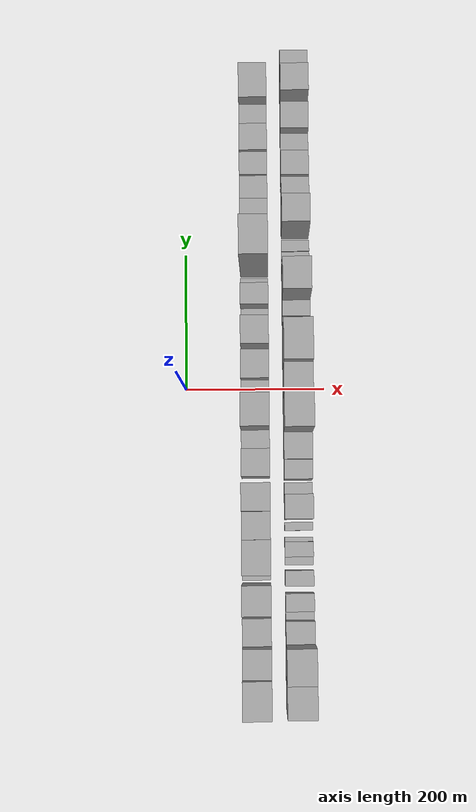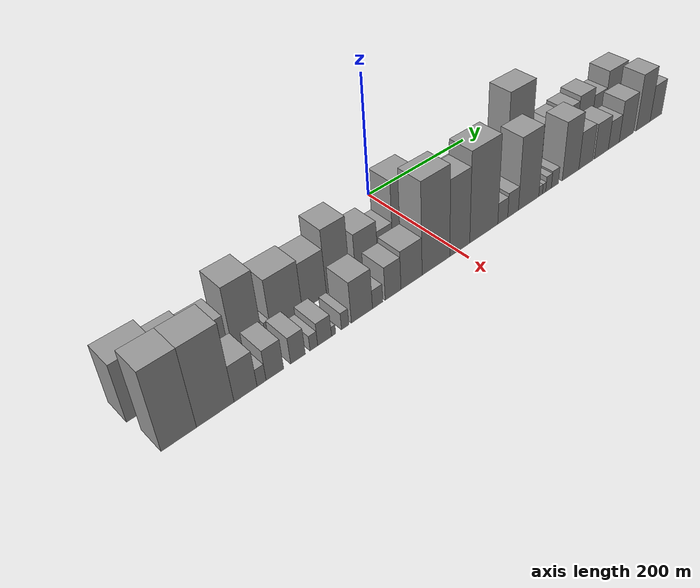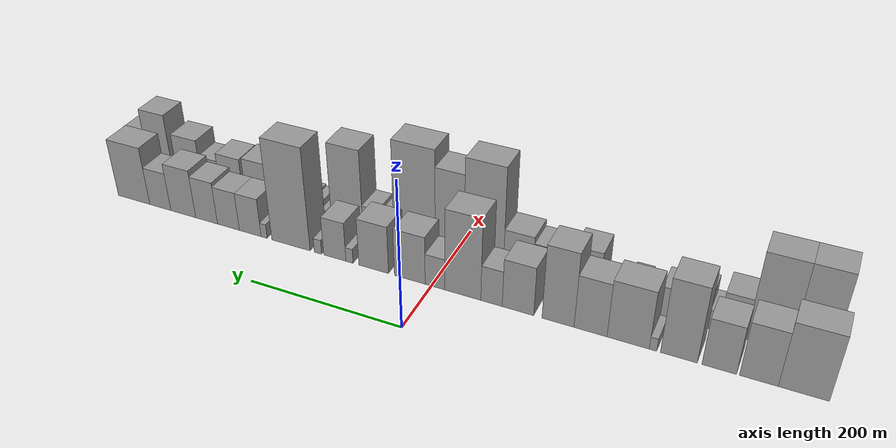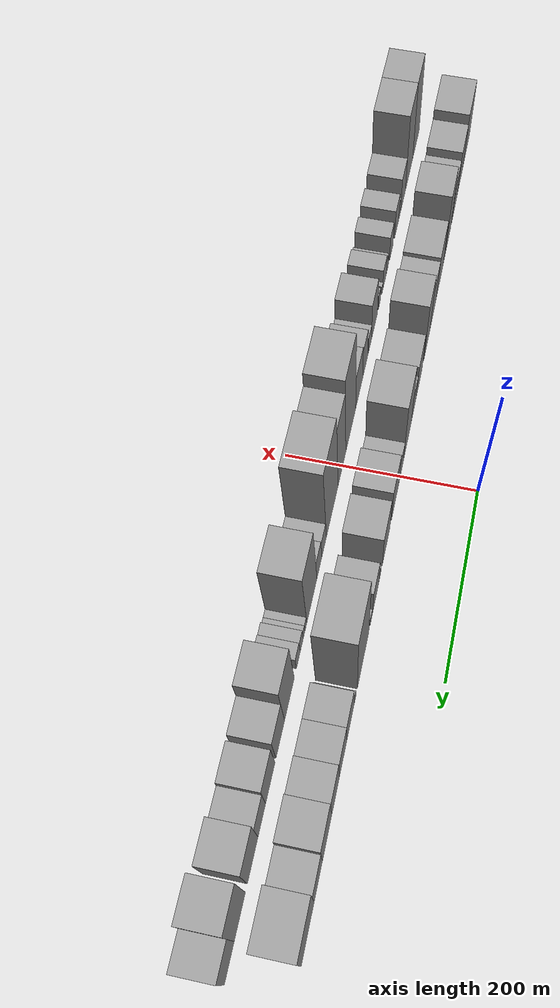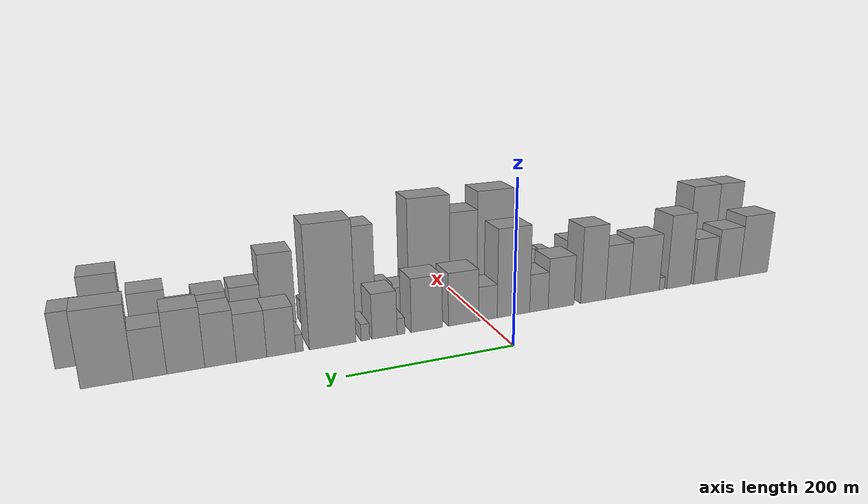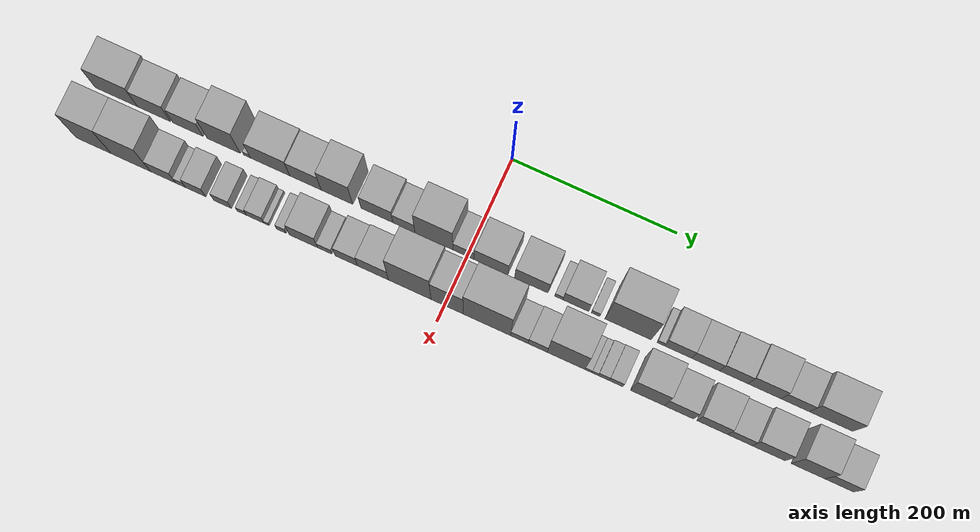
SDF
<sdf version="1.6">
 <world name="default">
  <scene>
   <sky><clouds><speed>12</speed></clouds></sky>
   <ambient>0.4 0.4 0.4 1</ambient>
   <background>0.7 0.7 0.7 1</background>
   <shadows>1</shadows>
  </scene>
  <gravity>0 0 -9.8066</gravity>
  <magnetic_field>6e-06 2.3e-05 -4.2e-05</magnetic_field>
  <physics default="0" name="default_physics" type="ode">
   <ode>
    <solver>
     <type>quick</type>
     <iters>10</iters>
     <sor>1.0</sor>
     <use_dynamic_moi_rescaling>0</use_dynamic_moi_rescaling>
    </solver>
    <constraints>
     <cfm>0</cfm>
     <erp>0.2</erp>
     <contact_max_correcting_vel>100</contact_max_correcting_vel>
     <contact_surface_layer>0.001</contact_surface_layer>
    </constraints>
   </ode>
   <max_step_size>0.004</max_step_size>
   <real_time_factor>1</real_time_factor>
   <real_time_update_rate>250</real_time_update_rate>
  </physics>
  <light name="sun" type="directional">
   <pose>0 0 10 0 0 0</pose>
   <diffuse>0.8 0.8 0.8 1</diffuse>
   <specular>0.2 0.2 0.2 1</specular>
   <attenuation>
    <range>1000</range>
    <constant>0.9</constant>
    <linear>0.01</linear>
    <quadratic>0.001</quadratic>
   </attenuation>
   <direction>-0.5 0.1 -0.9</direction>
  </light>
  <model name="building_1">
   <static>1</static>
   <pose>100.0000 -429.8441 0 0.000000 0.000000 0.000000</pose>
   <link name="link">
    <pose>0 0 45.00 0 0 0</pose>
    <collision name="collision"><geometry><box><size>40.0000 52.3119 90.0000</size></box></geometry></collision>
    <visual name="visual">
     <cast_shadows>0</cast_shadows>
     <geometry><box><size>40.0000 52.3119 90.0000</size></box></geometry>
     <material>
      <script>
       <uri>model://grey_wall/materials/scripts</uri>
       <uri>model://grey_wall/materials/textures</uri>
       <name>vrc/grey_wall</name>
      </script>
     </material>
    </visual>
   </link>
  </model>
  <model name="building_2">
   <static>1</static>
   <pose>100.0000 -383.3318 0 0.000000 0.000000 0.000000</pose>
   <link name="link">
    <pose>0 0 37.50 0 0 0</pose>
    <collision name="collision"><geometry><box><size>40.0000 40.7127 75.0000</size></box></geometry></collision>
    <visual name="visual">
     <cast_shadows>0</cast_shadows>
     <geometry><box><size>40.0000 40.7127 75.0000</size></box></geometry>
     <material>
      <script>
       <uri>model://grey_wall/materials/scripts</uri>
       <uri>model://grey_wall/materials/textures</uri>
       <name>vrc/grey_wall</name>
      </script>
     </material>
    </visual>
   </link>
  </model>
  <model name="building_3">
   <static>1</static>
   <pose>100.0000 -341.3098 0 0.000000 0.000000 0.000000</pose>
   <link name="link">
    <pose>0 0 33.00 0 0 0</pose>
    <collision name="collision"><geometry><box><size>40.0000 37.3312 66.0000</size></box></geometry></collision>
    <visual name="visual">
     <cast_shadows>0</cast_shadows>
     <geometry><box><size>40.0000 37.3312 66.0000</size></box></geometry>
     <material>
      <script>
       <uri>model://grey_wall/materials/scripts</uri>
       <uri>model://grey_wall/materials/textures</uri>
       <name>vrc/grey_wall</name>
      </script>
     </material>
    </visual>
   </link>
  </model>
  <model name="building_4">
   <static>1</static>
   <pose>100.0000 -297.2772 0 0.000000 0.000000 0.000000</pose>
   <link name="link">
    <pose>0 0 52.50 0 0 0</pose>
    <collision name="collision"><geometry><box><size>40.0000 40.7340 105.0000</size></box></geometry></collision>
    <visual name="visual">
     <cast_shadows>0</cast_shadows>
     <geometry><box><size>40.0000 40.7340 105.0000</size></box></geometry>
     <material>
      <script>
       <uri>model://grey_wall/materials/scripts</uri>
       <uri>model://grey_wall/materials/textures</uri>
       <name>vrc/grey_wall</name>
      </script>
     </material>
    </visual>
   </link>
  </model>
  <model name="building_5">
   <static>1</static>
   <pose>100.0000 -268.6470 0 0.000000 0.000000 0.000000</pose>
   <link name="link">
    <pose>0 0 9.00 0 0 0</pose>
    <collision name="collision"><geometry><box><size>40.0000 8.5264 18.0000</size></box></geometry></collision>
    <visual name="visual">
     <cast_shadows>0</cast_shadows>
     <geometry><box><size>40.0000 8.5264 18.0000</size></box></geometry>
     <material>
      <script>
       <uri>model://grey_wall/materials/scripts</uri>
       <uri>model://grey_wall/materials/textures</uri>
       <name>vrc/grey_wall</name>
      </script>
     </material>
    </visual>
   </link>
  </model>
  <model name="building_6">
   <static>1</static>
   <pose>100.0000 -240.2569 0 0.000000 0.000000 0.000000</pose>
   <link name="link">
    <pose>0 0 40.50 0 0 0</pose>
    <collision name="collision"><geometry><box><size>40.0000 48.2538 81.0000</size></box></geometry></collision>
    <visual name="visual">
     <cast_shadows>0</cast_shadows>
     <geometry><box><size>40.0000 48.2538 81.0000</size></box></geometry>
     <material>
      <script>
       <uri>model://grey_wall/materials/scripts</uri>
       <uri>model://grey_wall/materials/textures</uri>
       <name>vrc/grey_wall</name>
      </script>
     </material>
    </visual>
   </link>
  </model>
  <model name="building_7">
   <static>1</static>
   <pose>100.0000 -196.8343 0 0.000000 0.000000 0.000000</pose>
   <link name="link">
    <pose>0 0 37.50 0 0 0</pose>
    <collision name="collision"><geometry><box><size>40.0000 38.5914 75.0000</size></box></geometry></collision>
    <visual name="visual">
     <cast_shadows>0</cast_shadows>
     <geometry><box><size>40.0000 38.5914 75.0000</size></box></geometry>
     <material>
      <script>
       <uri>model://grey_wall/materials/scripts</uri>
       <uri>model://grey_wall/materials/textures</uri>
       <name>vrc/grey_wall</name>
      </script>
     </material>
    </visual>
   </link>
  </model>
  <model name="building_8">
   <static>1</static>
   <pose>100.0000 -158.3470 0 0.000000 0.000000 0.000000</pose>
   <link name="link">
    <pose>0 0 52.50 0 0 0</pose>
    <collision name="collision"><geometry><box><size>40.0000 38.3832 105.0000</size></box></geometry></collision>
    <visual name="visual">
     <cast_shadows>0</cast_shadows>
     <geometry><box><size>40.0000 38.3832 105.0000</size></box></geometry>
     <material>
      <script>
       <uri>model://grey_wall/materials/scripts</uri>
       <uri>model://grey_wall/materials/textures</uri>
       <name>vrc/grey_wall</name>
      </script>
     </material>
    </visual>
   </link>
  </model>
  <model name="building_9">
   <static>1</static>
   <pose>100.0000 -109.7834 0 0.000000 0.000000 0.000000</pose>
   <link name="link">
    <pose>0 0 34.50 0 0 0</pose>
    <collision name="collision"><geometry><box><size>40.0000 38.7440 69.0000</size></box></geometry></collision>
    <visual name="visual">
     <cast_shadows>0</cast_shadows>
     <geometry><box><size>40.0000 38.7440 69.0000</size></box></geometry>
     <material>
      <script>
       <uri>model://grey_wall/materials/scripts</uri>
       <uri>model://grey_wall/materials/textures</uri>
       <name>vrc/grey_wall</name>
      </script>
     </material>
    </visual>
   </link>
  </model>
  <model name="building_10">
   <static>1</static>
   <pose>100.0000 -76.9616 0 0.000000 0.000000 0.000000</pose>
   <link name="link">
    <pose>0 0 25.50 0 0 0</pose>
    <collision name="collision"><geometry><box><size>40.0000 26.8995 51.0000</size></box></geometry></collision>
    <visual name="visual">
     <cast_shadows>0</cast_shadows>
     <geometry><box><size>40.0000 26.8995 51.0000</size></box></geometry>
     <material>
      <script>
       <uri>model://grey_wall/materials/scripts</uri>
       <uri>model://grey_wall/materials/textures</uri>
       <name>vrc/grey_wall</name>
      </script>
     </material>
    </visual>
   </link>
  </model>
  <model name="building_11">
   <static>1</static>
   <pose>100.0000 -40.4361 0 0.000000 0.000000 0.000000</pose>
   <link name="link">
    <pose>0 0 58.50 0 0 0</pose>
    <collision name="collision"><geometry><box><size>40.0000 46.1516 117.0000</size></box></geometry></collision>
    <visual name="visual">
     <cast_shadows>0</cast_shadows>
     <geometry><box><size>40.0000 46.1516 117.0000</size></box></geometry>
     <material>
      <script>
       <uri>model://grey_wall/materials/scripts</uri>
       <uri>model://grey_wall/materials/textures</uri>
       <name>vrc/grey_wall</name>
      </script>
     </material>
    </visual>
   </link>
  </model>
  <model name="building_12">
   <static>1</static>
   <pose>100.0000 -4.5698 0 0.000000 0.000000 0.000000</pose>
   <link name="link">
    <pose>0 0 22.50 0 0 0</pose>
    <collision name="collision"><geometry><box><size>40.0000 25.5809 45.0000</size></box></geometry></collision>
    <visual name="visual">
     <cast_shadows>0</cast_shadows>
     <geometry><box><size>40.0000 25.5809 45.0000</size></box></geometry>
     <material>
      <script>
       <uri>model://grey_wall/materials/scripts</uri>
       <uri>model://grey_wall/materials/textures</uri>
       <name>vrc/grey_wall</name>
      </script>
     </material>
    </visual>
   </link>
  </model>
  <model name="building_13">
   <static>1</static>
   <pose>100.0000 28.6421 0 0.000000 0.000000 0.000000</pose>
   <link name="link">
    <pose>0 0 34.50 0 0 0</pose>
    <collision name="collision"><geometry><box><size>40.0000 40.8430 69.0000</size></box></geometry></collision>
    <visual name="visual">
     <cast_shadows>0</cast_shadows>
     <geometry><box><size>40.0000 40.8430 69.0000</size></box></geometry>
     <material>
      <script>
       <uri>model://grey_wall/materials/scripts</uri>
       <uri>model://grey_wall/materials/textures</uri>
       <name>vrc/grey_wall</name>
      </script>
     </material>
    </visual>
   </link>
  </model>
  <model name="building_14">
   <static>1</static>
   <pose>100.0000 77.3042 0 0.000000 0.000000 0.000000</pose>
   <link name="link">
    <pose>0 0 34.50 0 0 0</pose>
    <collision name="collision"><geometry><box><size>40.0000 40.4811 69.0000</size></box></geometry></collision>
    <visual name="visual">
     <cast_shadows>0</cast_shadows>
     <geometry><box><size>40.0000 40.4811 69.0000</size></box></geometry>
     <material>
      <script>
       <uri>model://grey_wall/materials/scripts</uri>
       <uri>model://grey_wall/materials/textures</uri>
       <name>vrc/grey_wall</name>
      </script>
     </material>
    </visual>
   </link>
  </model>
  <model name="building_15">
   <static>1</static>
   <pose>100.0000 110.5160 0 0.000000 0.000000 0.000000</pose>
   <link name="link">
    <pose>0 0 10.50 0 0 0</pose>
    <collision name="collision"><geometry><box><size>40.0000 9.9425 21.0000</size></box></geometry></collision>
    <visual name="visual">
     <cast_shadows>0</cast_shadows>
     <geometry><box><size>40.0000 9.9425 21.0000</size></box></geometry>
     <material>
      <script>
       <uri>model://grey_wall/materials/scripts</uri>
       <uri>model://grey_wall/materials/textures</uri>
       <name>vrc/grey_wall</name>
      </script>
     </material>
    </visual>
   </link>
  </model>
  <model name="building_16">
   <static>1</static>
   <pose>100.0000 131.0687 0 0.000000 0.000000 0.000000</pose>
   <link name="link">
    <pose>0 0 28.50 0 0 0</pose>
    <collision name="collision"><geometry><box><size>40.0000 31.1630 57.0000</size></box></geometry></collision>
    <visual name="visual">
     <cast_shadows>0</cast_shadows>
     <geometry><box><size>40.0000 31.1630 57.0000</size></box></geometry>
     <material>
      <script>
       <uri>model://grey_wall/materials/scripts</uri>
       <uri>model://grey_wall/materials/textures</uri>
       <name>vrc/grey_wall</name>
      </script>
     </material>
    </visual>
   </link>
  </model>
  <model name="building_17">
   <static>1</static>
   <pose>100.0000 154.8669 0 0.000000 0.000000 0.000000</pose>
   <link name="link">
    <pose>0 0 10.50 0 0 0</pose>
    <collision name="collision"><geometry><box><size>40.0000 10.4335 21.0000</size></box></geometry></collision>
    <visual name="visual">
     <cast_shadows>0</cast_shadows>
     <geometry><box><size>40.0000 10.4335 21.0000</size></box></geometry>
     <material>
      <script>
       <uri>model://grey_wall/materials/scripts</uri>
       <uri>model://grey_wall/materials/textures</uri>
       <name>vrc/grey_wall</name>
      </script>
     </material>
    </visual>
   </link>
  </model>
  <model name="building_18">
   <static>1</static>
   <pose>100.0000 193.8247 0 0.000000 0.000000 0.000000</pose>
   <link name="link">
    <pose>0 0 75.00 0 0 0</pose>
    <collision name="collision"><geometry><box><size>40.0000 55.4822 150.0000</size></box></geometry></collision>
    <visual name="visual">
     <cast_shadows>0</cast_shadows>
     <geometry><box><size>40.0000 55.4822 150.0000</size></box></geometry>
     <material>
      <script>
       <uri>model://grey_wall/materials/scripts</uri>
       <uri>model://grey_wall/materials/textures</uri>
       <name>vrc/grey_wall</name>
      </script>
     </material>
    </visual>
   </link>
  </model>
  <model name="building_19">
   <static>1</static>
   <pose>100.0000 232.9979 0 0.000000 0.000000 0.000000</pose>
   <link name="link">
    <pose>0 0 10.50 0 0 0</pose>
    <collision name="collision"><geometry><box><size>40.0000 8.8642 21.0000</size></box></geometry></collision>
    <visual name="visual">
     <cast_shadows>0</cast_shadows>
     <geometry><box><size>40.0000 8.8642 21.0000</size></box></geometry>
     <material>
      <script>
       <uri>model://grey_wall/materials/scripts</uri>
       <uri>model://grey_wall/materials/textures</uri>
       <name>vrc/grey_wall</name>
      </script>
     </material>
    </visual>
   </link>
  </model>
  <model name="building_20">
   <static>1</static>
   <pose>100.0000 253.7169 0 0.000000 0.000000 0.000000</pose>
   <link name="link">
    <pose>0 0 28.50 0 0 0</pose>
    <collision name="collision"><geometry><box><size>40.0000 32.5739 57.0000</size></box></geometry></collision>
    <visual name="visual">
     <cast_shadows>0</cast_shadows>
     <geometry><box><size>40.0000 32.5739 57.0000</size></box></geometry>
     <material>
      <script>
       <uri>model://grey_wall/materials/scripts</uri>
       <uri>model://grey_wall/materials/textures</uri>
       <name>vrc/grey_wall</name>
      </script>
     </material>
    </visual>
   </link>
  </model>
  <model name="building_21">
   <static>1</static>
   <pose>100.0000 286.6877 0 0.000000 0.000000 0.000000</pose>
   <link name="link">
    <pose>0 0 28.50 0 0 0</pose>
    <collision name="collision"><geometry><box><size>40.0000 33.3677 57.0000</size></box></geometry></collision>
    <visual name="visual">
     <cast_shadows>0</cast_shadows>
     <geometry><box><size>40.0000 33.3677 57.0000</size></box></geometry>
     <material>
      <script>
       <uri>model://grey_wall/materials/scripts</uri>
       <uri>model://grey_wall/materials/textures</uri>
       <name>vrc/grey_wall</name>
      </script>
     </material>
    </visual>
   </link>
  </model>
  <model name="building_22">
   <static>1</static>
   <pose>100.0000 320.2430 0 0.000000 0.000000 0.000000</pose>
   <link name="link">
    <pose>0 0 31.50 0 0 0</pose>
    <collision name="collision"><geometry><box><size>40.0000 33.7429 63.0000</size></box></geometry></collision>
    <visual name="visual">
     <cast_shadows>0</cast_shadows>
     <geometry><box><size>40.0000 33.7429 63.0000</size></box></geometry>
     <material>
      <script>
       <uri>model://grey_wall/materials/scripts</uri>
       <uri>model://grey_wall/materials/textures</uri>
       <name>vrc/grey_wall</name>
      </script>
     </material>
    </visual>
   </link>
  </model>
  <model name="building_23">
   <static>1</static>
   <pose>100.0000 356.7612 0 0.000000 0.000000 0.000000</pose>
   <link name="link">
    <pose>0 0 36.00 0 0 0</pose>
    <collision name="collision"><geometry><box><size>40.0000 39.2936 72.0000</size></box></geometry></collision>
    <visual name="visual">
     <cast_shadows>0</cast_shadows>
     <geometry><box><size>40.0000 39.2936 72.0000</size></box></geometry>
     <material>
      <script>
       <uri>model://grey_wall/materials/scripts</uri>
       <uri>model://grey_wall/materials/textures</uri>
       <name>vrc/grey_wall</name>
      </script>
     </material>
    </visual>
   </link>
  </model>
  <model name="building_24">
   <static>1</static>
   <pose>100.0000 393.3028 0 0.000000 0.000000 0.000000</pose>
   <link name="link">
    <pose>0 0 28.50 0 0 0</pose>
    <collision name="collision"><geometry><box><size>40.0000 33.7896 57.0000</size></box></geometry></collision>
    <visual name="visual">
     <cast_shadows>0</cast_shadows>
     <geometry><box><size>40.0000 33.7896 57.0000</size></box></geometry>
     <material>
      <script>
       <uri>model://grey_wall/materials/scripts</uri>
       <uri>model://grey_wall/materials/textures</uri>
       <name>vrc/grey_wall</name>
      </script>
     </material>
    </visual>
   </link>
  </model>
  <model name="building_25">
   <static>1</static>
   <pose>100.0000 435.9201 0 0.000000 0.000000 0.000000</pose>
   <link name="link">
    <pose>0 0 43.50 0 0 0</pose>
    <collision name="collision"><geometry><box><size>40.0000 51.4449 87.0000</size></box></geometry></collision>
    <visual name="visual">
     <cast_shadows>0</cast_shadows>
     <geometry><box><size>40.0000 51.4449 87.0000</size></box></geometry>
     <material>
      <script>
       <uri>model://grey_wall/materials/scripts</uri>
       <uri>model://grey_wall/materials/textures</uri>
       <name>vrc/grey_wall</name>
      </script>
     </material>
    </visual>
   </link>
  </model>
  <model name="building_26">
   <static>1</static>
   <pose>160.0000 -428.3952 0 0.000000 0.000000 0.000000</pose>
   <link name="link">
    <pose>0 0 61.50 0 0 0</pose>
    <collision name="collision"><geometry><box><size>40.0000 43.2096 123.0000</size></box></geometry></collision>
    <visual name="visual">
     <cast_shadows>0</cast_shadows>
     <geometry><box><size>40.0000 43.2096 123.0000</size></box></geometry>
     <material>
      <script>
       <uri>model://grey_wall/materials/scripts</uri>
       <uri>model://grey_wall/materials/textures</uri>
       <name>vrc/grey_wall</name>
      </script>
     </material>
    </visual>
   </link>
  </model>
  <model name="building_27">
   <static>1</static>
   <pose>160.0000 -382.6893 0 0.000000 0.000000 0.000000</pose>
   <link name="link">
    <pose>0 0 61.50 0 0 0</pose>
    <collision name="collision"><geometry><box><size>40.0000 48.2023 123.0000</size></box></geometry></collision>
    <visual name="visual">
     <cast_shadows>0</cast_shadows>
     <geometry><box><size>40.0000 48.2023 123.0000</size></box></geometry>
     <material>
      <script>
       <uri>model://grey_wall/materials/scripts</uri>
       <uri>model://grey_wall/materials/textures</uri>
       <name>vrc/grey_wall</name>
      </script>
     </material>
    </visual>
   </link>
  </model>
  <model name="building_28">
   <static>1</static>
   <pose>160.0000 -343.1503 0 0.000000 0.000000 0.000000</pose>
   <link name="link">
    <pose>0 0 28.50 0 0 0</pose>
    <collision name="collision"><geometry><box><size>40.0000 30.8755 57.0000</size></box></geometry></collision>
    <visual name="visual">
     <cast_shadows>0</cast_shadows>
     <geometry><box><size>40.0000 30.8755 57.0000</size></box></geometry>
     <material>
      <script>
       <uri>model://grey_wall/materials/scripts</uri>
       <uri>model://grey_wall/materials/textures</uri>
       <name>vrc/grey_wall</name>
      </script>
     </material>
    </visual>
   </link>
  </model>
  <model name="building_29">
   <static>1</static>
   <pose>160.0000 -321.4778 0 0.000000 0.000000 0.000000</pose>
   <link name="link">
    <pose>0 0 13.50 0 0 0</pose>
    <collision name="collision"><geometry><box><size>40.0000 12.4696 27.0000</size></box></geometry></collision>
    <visual name="visual">
     <cast_shadows>0</cast_shadows>
     <geometry><box><size>40.0000 12.4696 27.0000</size></box></geometry>
     <material>
      <script>
       <uri>model://grey_wall/materials/scripts</uri>
       <uri>model://grey_wall/materials/textures</uri>
       <name>vrc/grey_wall</name>
      </script>
     </material>
    </visual>
   </link>
  </model>
  <model name="building_30">
   <static>1</static>
   <pose>160.0000 -302.8829 0 0.000000 0.000000 0.000000</pose>
   <link name="link">
    <pose>0 0 24.00 0 0 0</pose>
    <collision name="collision"><geometry><box><size>40.0000 24.7202 48.0000</size></box></geometry></collision>
    <visual name="visual">
     <cast_shadows>0</cast_shadows>
     <geometry><box><size>40.0000 24.7202 48.0000</size></box></geometry>
     <material>
      <script>
       <uri>model://grey_wall/materials/scripts</uri>
       <uri>model://grey_wall/materials/textures</uri>
       <name>vrc/grey_wall</name>
      </script>
     </material>
    </visual>
   </link>
  </model>
  <model name="building_31">
   <static>1</static>
   <pose>160.0000 -269.7878 0 0.000000 0.000000 0.000000</pose>
   <link name="link">
    <pose>0 0 21.00 0 0 0</pose>
    <collision name="collision"><geometry><box><size>40.0000 21.4700 42.0000</size></box></geometry></collision>
    <visual name="visual">
     <cast_shadows>0</cast_shadows>
     <geometry><box><size>40.0000 21.4700 42.0000</size></box></geometry>
     <material>
      <script>
       <uri>model://grey_wall/materials/scripts</uri>
       <uri>model://grey_wall/materials/textures</uri>
       <name>vrc/grey_wall</name>
      </script>
     </material>
    </visual>
   </link>
  </model>
  <model name="building_32">
   <static>1</static>
   <pose>160.0000 -246.2826 0 0.000000 0.000000 0.000000</pose>
   <link name="link">
    <pose>0 0 12.00 0 0 0</pose>
    <collision name="collision"><geometry><box><size>40.0000 11.5406 24.0000</size></box></geometry></collision>
    <visual name="visual">
     <cast_shadows>0</cast_shadows>
     <geometry><box><size>40.0000 11.5406 24.0000</size></box></geometry>
     <material>
      <script>
       <uri>model://grey_wall/materials/scripts</uri>
       <uri>model://grey_wall/materials/textures</uri>
       <name>vrc/grey_wall</name>
      </script>
     </material>
    </visual>
   </link>
  </model>
  <model name="building_33">
   <static>1</static>
   <pose>160.0000 -229.9389 0 0.000000 0.000000 0.000000</pose>
   <link name="link">
    <pose>0 0 18.00 0 0 0</pose>
    <collision name="collision"><geometry><box><size>40.0000 21.1466 36.0000</size></box></geometry></collision>
    <visual name="visual">
     <cast_shadows>0</cast_shadows>
     <geometry><box><size>40.0000 21.1466 36.0000</size></box></geometry>
     <material>
      <script>
       <uri>model://grey_wall/materials/scripts</uri>
       <uri>model://grey_wall/materials/textures</uri>
       <name>vrc/grey_wall</name>
      </script>
     </material>
    </visual>
   </link>
  </model>
  <model name="building_34">
   <static>1</static>
   <pose>160.0000 -216.1467 0 0.000000 0.000000 0.000000</pose>
   <link name="link">
    <pose>0 0 7.50 0 0 0</pose>
    <collision name="collision"><geometry><box><size>40.0000 6.4379 15.0000</size></box></geometry></collision>
    <visual name="visual">
     <cast_shadows>0</cast_shadows>
     <geometry><box><size>40.0000 6.4379 15.0000</size></box></geometry>
     <material>
      <script>
       <uri>model://grey_wall/materials/scripts</uri>
       <uri>model://grey_wall/materials/textures</uri>
       <name>vrc/grey_wall</name>
      </script>
     </material>
    </visual>
   </link>
  </model>
  <model name="building_35">
   <static>1</static>
   <pose>160.0000 -198.1049 0 0.000000 0.000000 0.000000</pose>
   <link name="link">
    <pose>0 0 13.50 0 0 0</pose>
    <collision name="collision"><geometry><box><size>40.0000 11.6456 27.0000</size></box></geometry></collision>
    <visual name="visual">
     <cast_shadows>0</cast_shadows>
     <geometry><box><size>40.0000 11.6456 27.0000</size></box></geometry>
     <material>
      <script>
       <uri>model://grey_wall/materials/scripts</uri>
       <uri>model://grey_wall/materials/textures</uri>
       <name>vrc/grey_wall</name>
      </script>
     </material>
    </visual>
   </link>
  </model>
  <model name="building_36">
   <static>1</static>
   <pose>160.0000 -171.0434 0 0.000000 0.000000 0.000000</pose>
   <link name="link">
    <pose>0 0 33.00 0 0 0</pose>
    <collision name="collision"><geometry><box><size>40.0000 34.4775 66.0000</size></box></geometry></collision>
    <visual name="visual">
     <cast_shadows>0</cast_shadows>
     <geometry><box><size>40.0000 34.4775 66.0000</size></box></geometry>
     <material>
      <script>
       <uri>model://grey_wall/materials/scripts</uri>
       <uri>model://grey_wall/materials/textures</uri>
       <name>vrc/grey_wall</name>
      </script>
     </material>
    </visual>
   </link>
  </model>
  <model name="building_37">
   <static>1</static>
   <pose>160.0000 -145.1823 0 0.000000 0.000000 0.000000</pose>
   <link name="link">
    <pose>0 0 15.00 0 0 0</pose>
    <collision name="collision"><geometry><box><size>40.0000 17.2447 30.0000</size></box></geometry></collision>
    <visual name="visual">
     <cast_shadows>0</cast_shadows>
     <geometry><box><size>40.0000 17.2447 30.0000</size></box></geometry>
     <material>
      <script>
       <uri>model://grey_wall/materials/scripts</uri>
       <uri>model://grey_wall/materials/textures</uri>
       <name>vrc/grey_wall</name>
      </script>
     </material>
    </visual>
   </link>
  </model>
  <model name="building_38">
   <static>1</static>
   <pose>160.0000 -118.9762 0 0.000000 0.000000 0.000000</pose>
   <link name="link">
    <pose>0 0 27.00 0 0 0</pose>
    <collision name="collision"><geometry><box><size>40.0000 27.1674 54.0000</size></box></geometry></collision>
    <visual name="visual">
     <cast_shadows>0</cast_shadows>
     <geometry><box><size>40.0000 27.1674 54.0000</size></box></geometry>
     <material>
      <script>
       <uri>model://grey_wall/materials/scripts</uri>
       <uri>model://grey_wall/materials/textures</uri>
       <name>vrc/grey_wall</name>
      </script>
     </material>
    </visual>
   </link>
  </model>
  <model name="building_39">
   <static>1</static>
   <pose>160.0000 -86.5784 0 0.000000 0.000000 0.000000</pose>
   <link name="link">
    <pose>0 0 31.50 0 0 0</pose>
    <collision name="collision"><geometry><box><size>40.0000 37.6281 63.0000</size></box></geometry></collision>
    <visual name="visual">
     <cast_shadows>0</cast_shadows>
     <geometry><box><size>40.0000 37.6281 63.0000</size></box></geometry>
     <material>
      <script>
       <uri>model://grey_wall/materials/scripts</uri>
       <uri>model://grey_wall/materials/textures</uri>
       <name>vrc/grey_wall</name>
      </script>
     </material>
    </visual>
   </link>
  </model>
  <model name="building_40">
   <static>1</static>
   <pose>160.0000 -41.9937 0 0.000000 0.000000 0.000000</pose>
   <link name="link">
    <pose>0 0 75.00 0 0 0</pose>
    <collision name="collision"><geometry><box><size>40.0000 51.5414 150.0000</size></box></geometry></collision>
    <visual name="visual">
     <cast_shadows>0</cast_shadows>
     <geometry><box><size>40.0000 51.5414 150.0000</size></box></geometry>
     <material>
      <script>
       <uri>model://grey_wall/materials/scripts</uri>
       <uri>model://grey_wall/materials/textures</uri>
       <name>vrc/grey_wall</name>
      </script>
     </material>
    </visual>
   </link>
  </model>
  <model name="building_41">
   <static>1</static>
   <pose>160.0000 3.1176 0 0.000000 0.000000 0.000000</pose>
   <link name="link">
    <pose>0 0 63.00 0 0 0</pose>
    <collision name="collision"><geometry><box><size>40.0000 38.6812 126.0000</size></box></geometry></collision>
    <visual name="visual">
     <cast_shadows>0</cast_shadows>
     <geometry><box><size>40.0000 38.6812 126.0000</size></box></geometry>
     <material>
      <script>
       <uri>model://grey_wall/materials/scripts</uri>
       <uri>model://grey_wall/materials/textures</uri>
       <name>vrc/grey_wall</name>
      </script>
     </material>
    </visual>
   </link>
  </model>
  <model name="building_42">
   <static>1</static>
   <pose>160.0000 50.9717 0 0.000000 0.000000 0.000000</pose>
   <link name="link">
    <pose>0 0 75.00 0 0 0</pose>
    <collision name="collision"><geometry><box><size>40.0000 57.0269 150.0000</size></box></geometry></collision>
    <visual name="visual">
     <cast_shadows>0</cast_shadows>
     <geometry><box><size>40.0000 57.0269 150.0000</size></box></geometry>
     <material>
      <script>
       <uri>model://grey_wall/materials/scripts</uri>
       <uri>model://grey_wall/materials/textures</uri>
       <name>vrc/grey_wall</name>
      </script>
     </material>
    </visual>
   </link>
  </model>
  <model name="building_43">
   <static>1</static>
   <pose>160.0000 90.0743 0 0.000000 0.000000 0.000000</pose>
   <link name="link">
    <pose>0 0 18.00 0 0 0</pose>
    <collision name="collision"><geometry><box><size>40.0000 21.1782 36.0000</size></box></geometry></collision>
    <visual name="visual">
     <cast_shadows>0</cast_shadows>
     <geometry><box><size>40.0000 21.1782 36.0000</size></box></geometry>
     <material>
      <script>
       <uri>model://grey_wall/materials/scripts</uri>
       <uri>model://grey_wall/materials/textures</uri>
       <name>vrc/grey_wall</name>
      </script>
     </material>
    </visual>
   </link>
  </model>
  <model name="building_44">
   <static>1</static>
   <pose>160.0000 112.1305 0 0.000000 0.000000 0.000000</pose>
   <link name="link">
    <pose>0 0 21.00 0 0 0</pose>
    <collision name="collision"><geometry><box><size>40.0000 22.9343 42.0000</size></box></geometry></collision>
    <visual name="visual">
     <cast_shadows>0</cast_shadows>
     <geometry><box><size>40.0000 22.9343 42.0000</size></box></geometry>
     <material>
      <script>
       <uri>model://grey_wall/materials/scripts</uri>
       <uri>model://grey_wall/materials/textures</uri>
       <name>vrc/grey_wall</name>
      </script>
     </material>
    </visual>
   </link>
  </model>
  <model name="building_45">
   <static>1</static>
   <pose>160.0000 146.2553 0 0.000000 0.000000 0.000000</pose>
   <link name="link">
    <pose>0 0 61.50 0 0 0</pose>
    <collision name="collision"><geometry><box><size>40.0000 45.3153 123.0000</size></box></geometry></collision>
    <visual name="visual">
     <cast_shadows>0</cast_shadows>
     <geometry><box><size>40.0000 45.3153 123.0000</size></box></geometry>
     <material>
      <script>
       <uri>model://grey_wall/materials/scripts</uri>
       <uri>model://grey_wall/materials/textures</uri>
       <name>vrc/grey_wall</name>
      </script>
     </material>
    </visual>
   </link>
  </model>
  <model name="building_46">
   <static>1</static>
   <pose>160.0000 173.0358 0 0.000000 0.000000 0.000000</pose>
   <link name="link">
    <pose>0 0 9.00 0 0 0</pose>
    <collision name="collision"><geometry><box><size>40.0000 8.2457 18.0000</size></box></geometry></collision>
    <visual name="visual">
     <cast_shadows>0</cast_shadows>
     <geometry><box><size>40.0000 8.2457 18.0000</size></box></geometry>
     <material>
      <script>
       <uri>model://grey_wall/materials/scripts</uri>
       <uri>model://grey_wall/materials/textures</uri>
       <name>vrc/grey_wall</name>
      </script>
     </material>
    </visual>
   </link>
  </model>
  <model name="building_47">
   <static>1</static>
   <pose>160.0000 180.9803 0 0.000000 0.000000 0.000000</pose>
   <link name="link">
    <pose>0 0 9.00 0 0 0</pose>
    <collision name="collision"><geometry><box><size>40.0000 7.6434 18.0000</size></box></geometry></collision>
    <visual name="visual">
     <cast_shadows>0</cast_shadows>
     <geometry><box><size>40.0000 7.6434 18.0000</size></box></geometry>
     <material>
      <script>
       <uri>model://grey_wall/materials/scripts</uri>
       <uri>model://grey_wall/materials/textures</uri>
       <name>vrc/grey_wall</name>
      </script>
     </material>
    </visual>
   </link>
  </model>
  <model name="building_48">
   <static>1</static>
   <pose>160.0000 191.3083 0 0.000000 0.000000 0.000000</pose>
   <link name="link">
    <pose>0 0 13.50 0 0 0</pose>
    <collision name="collision"><geometry><box><size>40.0000 13.0125 27.0000</size></box></geometry></collision>
    <visual name="visual">
     <cast_shadows>0</cast_shadows>
     <geometry><box><size>40.0000 13.0125 27.0000</size></box></geometry>
     <material>
      <script>
       <uri>model://grey_wall/materials/scripts</uri>
       <uri>model://grey_wall/materials/textures</uri>
       <name>vrc/grey_wall</name>
      </script>
     </material>
    </visual>
   </link>
  </model>
  <model name="building_49">
   <static>1</static>
   <pose>160.0000 206.1344 0 0.000000 0.000000 0.000000</pose>
   <link name="link">
    <pose>0 0 15.00 0 0 0</pose>
    <collision name="collision"><geometry><box><size>40.0000 16.6398 30.0000</size></box></geometry></collision>
    <visual name="visual">
     <cast_shadows>0</cast_shadows>
     <geometry><box><size>40.0000 16.6398 30.0000</size></box></geometry>
     <material>
      <script>
       <uri>model://grey_wall/materials/scripts</uri>
       <uri>model://grey_wall/materials/textures</uri>
       <name>vrc/grey_wall</name>
      </script>
     </material>
    </visual>
   </link>
  </model>
  <model name="building_50">
   <static>1</static>
   <pose>160.0000 243.6812 0 0.000000 0.000000 0.000000</pose>
   <link name="link">
    <pose>0 0 51.00 0 0 0</pose>
    <collision name="collision"><geometry><box><size>40.0000 40.4539 102.0000</size></box></geometry></collision>
    <visual name="visual">
     <cast_shadows>0</cast_shadows>
     <geometry><box><size>40.0000 40.4539 102.0000</size></box></geometry>
     <material>
      <script>
       <uri>model://grey_wall/materials/scripts</uri>
       <uri>model://grey_wall/materials/textures</uri>
       <name>vrc/grey_wall</name>
      </script>
     </material>
    </visual>
   </link>
  </model>
  <model name="building_51">
   <static>1</static>
   <pose>160.0000 281.3382 0 0.000000 0.000000 0.000000</pose>
   <link name="link">
    <pose>0 0 33.00 0 0 0</pose>
    <collision name="collision"><geometry><box><size>40.0000 34.8599 66.0000</size></box></geometry></collision>
    <visual name="visual">
     <cast_shadows>0</cast_shadows>
     <geometry><box><size>40.0000 34.8599 66.0000</size></box></geometry>
     <material>
      <script>
       <uri>model://grey_wall/materials/scripts</uri>
       <uri>model://grey_wall/materials/textures</uri>
       <name>vrc/grey_wall</name>
      </script>
     </material>
    </visual>
   </link>
  </model>
  <model name="building_52">
   <static>1</static>
   <pose>160.0000 320.9384 0 0.000000 0.000000 0.000000</pose>
   <link name="link">
    <pose>0 0 31.50 0 0 0</pose>
    <collision name="collision"><geometry><box><size>40.0000 36.3406 63.0000</size></box></geometry></collision>
    <visual name="visual">
     <cast_shadows>0</cast_shadows>
     <geometry><box><size>40.0000 36.3406 63.0000</size></box></geometry>
     <material>
      <script>
       <uri>model://grey_wall/materials/scripts</uri>
       <uri>model://grey_wall/materials/textures</uri>
       <name>vrc/grey_wall</name>
      </script>
     </material>
    </visual>
   </link>
  </model>
  <model name="building_53">
   <static>1</static>
   <pose>160.0000 353.6184 0 0.000000 0.000000 0.000000</pose>
   <link name="link">
    <pose>0 0 25.50 0 0 0</pose>
    <collision name="collision"><geometry><box><size>40.0000 29.0194 51.0000</size></box></geometry></collision>
    <visual name="visual">
     <cast_shadows>0</cast_shadows>
     <geometry><box><size>40.0000 29.0194 51.0000</size></box></geometry>
     <material>
      <script>
       <uri>model://grey_wall/materials/scripts</uri>
       <uri>model://grey_wall/materials/textures</uri>
       <name>vrc/grey_wall</name>
      </script>
     </material>
    </visual>
   </link>
  </model>
  <model name="building_54">
   <static>1</static>
   <pose>160.0000 387.8521 0 0.000000 0.000000 0.000000</pose>
   <link name="link">
    <pose>0 0 37.50 0 0 0</pose>
    <collision name="collision"><geometry><box><size>40.0000 39.4479 75.0000</size></box></geometry></collision>
    <visual name="visual">
     <cast_shadows>0</cast_shadows>
     <geometry><box><size>40.0000 39.4479 75.0000</size></box></geometry>
     <material>
      <script>
       <uri>model://grey_wall/materials/scripts</uri>
       <uri>model://grey_wall/materials/textures</uri>
       <name>vrc/grey_wall</name>
      </script>
     </material>
    </visual>
   </link>
  </model>
  <model name="building_55">
   <static>1</static>
   <pose>160.0000 434.4731 0 0.000000 0.000000 0.000000</pose>
   <link name="link">
    <pose>0 0 51.00 0 0 0</pose>
    <collision name="collision"><geometry><box><size>40.0000 39.7941 102.0000</size></box></geometry></collision>
    <visual name="visual">
     <cast_shadows>0</cast_shadows>
     <geometry><box><size>40.0000 39.7941 102.0000</size></box></geometry>
     <material>
      <script>
       <uri>model://grey_wall/materials/scripts</uri>
       <uri>model://grey_wall/materials/textures</uri>
       <name>vrc/grey_wall</name>
      </script>
     </material>
    </visual>
   </link>
  </model>
  <model name="building_56">
   <static>1</static>
   <pose>160.0000 471.4250 0 0.000000 0.000000 0.000000</pose>
   <link name="link">
    <pose>0 0 33.00 0 0 0</pose>
    <collision name="collision"><geometry><box><size>40.0000 34.1095 66.0000</size></box></geometry></collision>
    <visual name="visual">
     <cast_shadows>0</cast_shadows>
     <geometry><box><size>40.0000 34.1095 66.0000</size></box></geometry>
     <material>
      <script>
       <uri>model://grey_wall/materials/scripts</uri>
       <uri>model://grey_wall/materials/textures</uri>
       <name>vrc/grey_wall</name>
      </script>
     </material>
    </visual>
   </link>
  </model>
 </world>
</sdf>
